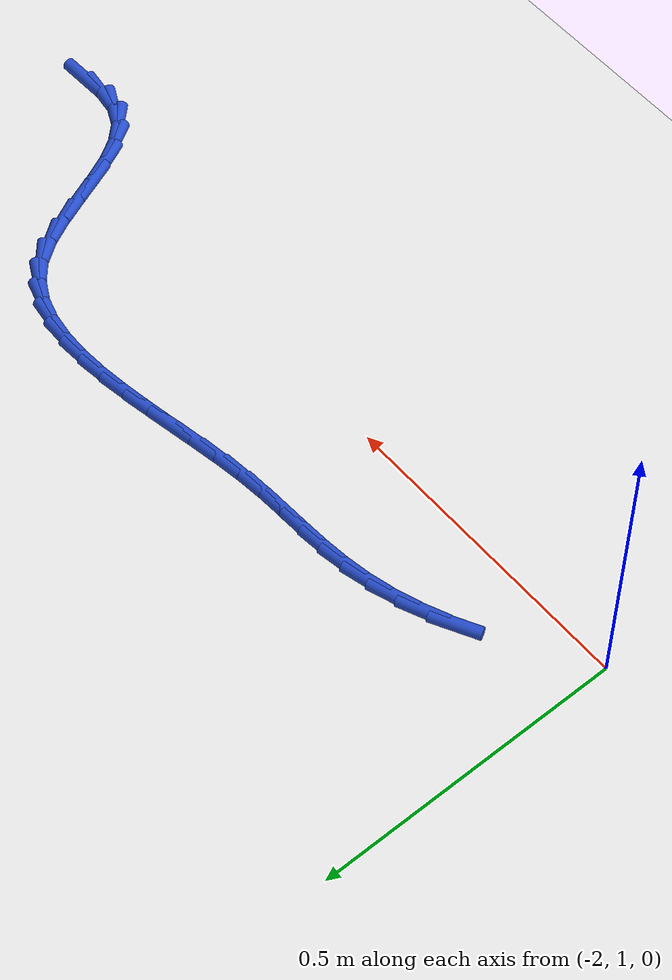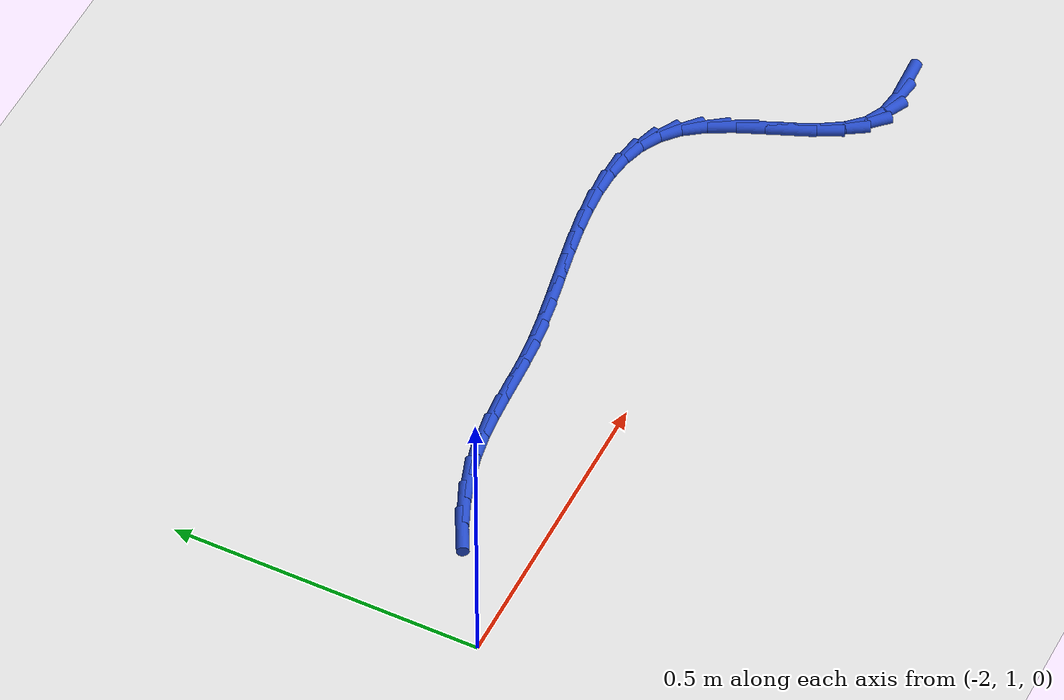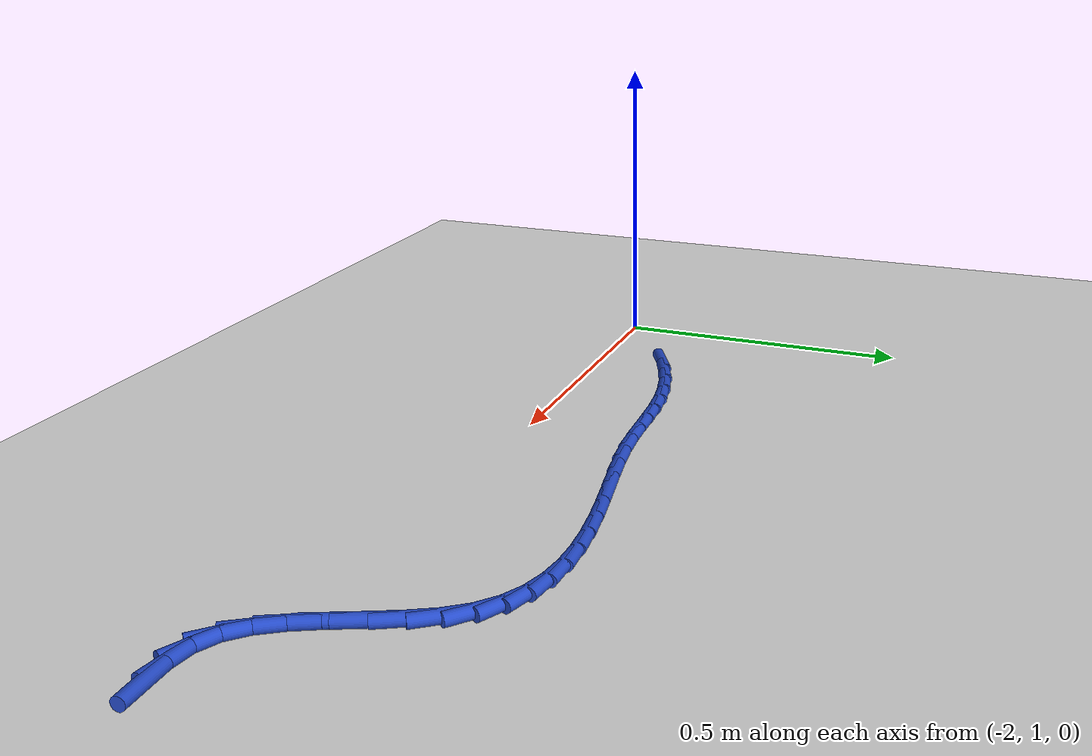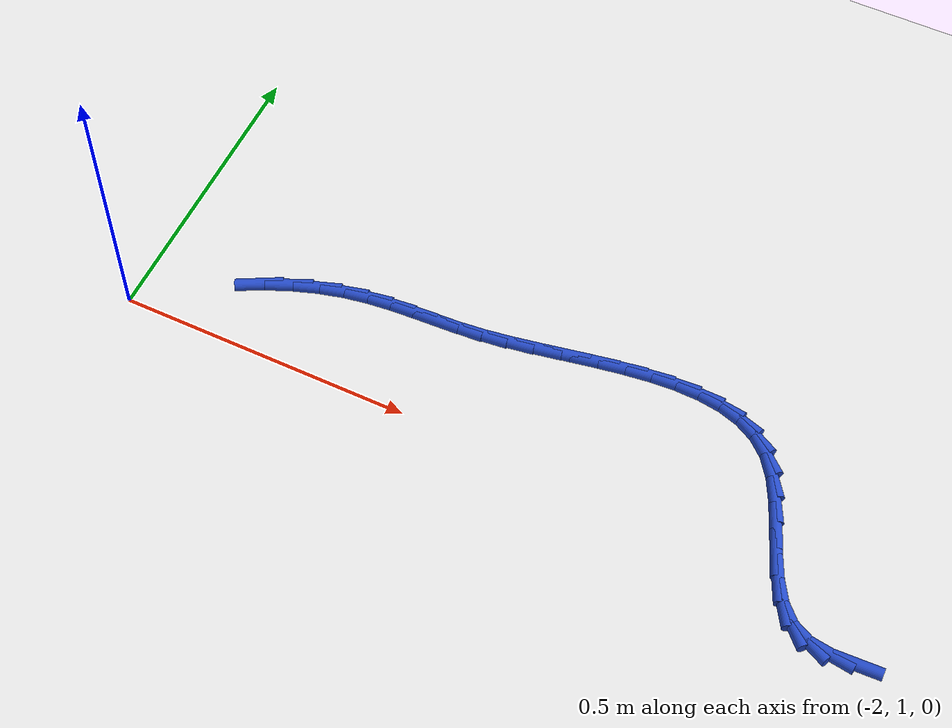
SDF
<sdf version="1.6">
 <world name="default">
  <model name="ground_plane">
   <static>1</static>
   <link name="link">
    <collision name="collision">
     <geometry><plane><normal>0 0 1</normal><size>100 100</size></plane></geometry>
     <surface><friction><ode><mu>100</mu><mu2>50</mu2></ode></friction></surface>
    </collision>
    <visual name="visual">
     <cast_shadows>0</cast_shadows>
     <geometry><plane><normal>0 0 1</normal><size>100 100</size></plane></geometry>
     <material>
      <script><uri>file://media/materials/scripts/gazebo.material</uri><name>Gazebo/WhiteGlow</name></script>
     </material>
    </visual>
   </link>
  </model>
  <model name="line">
   <link name="link_30">
    <pose>-0.7014262181568772 0.8988669522640895 0.01 0 1.57 0.03937064640493241</pose>
    <collision name="collision">
     <geometry><cylinder><radius>0.01</radius><length>0.08</length></cylinder></geometry>
    </collision>
    <visual name="visual">
     <material>
      <script><name>Gazebo/Blue</name><uri>file://media/materials/scripts/gazebo.material</uri></script>
     </material>
     <geometry><cylinder><radius>0.01</radius><length>0.08</length></cylinder></geometry>
    </visual>
   </link>
   <link name="link_31">
    <pose>-0.7425486307655478 0.8972470992615955 0.01 0 1.57 -0.14141432449012736</pose>
    <collision name="collision">
     <geometry><cylinder><radius>0.01</radius><length>0.08</length></cylinder></geometry>
    </collision>
    <visual name="visual">
     <material>
      <script><name>Gazebo/Blue</name><uri>file://media/materials/scripts/gazebo.material</uri></script>
     </material>
     <geometry><cylinder><radius>0.01</radius><length>0.08</length></cylinder></geometry>
    </visual>
   </link>
   <link name="link_32">
    <pose>-0.7795047738494155 0.9025083456058478 0.01 0 1.57 -0.46421868196721244</pose>
    <collision name="collision">
     <geometry><cylinder><radius>0.01</radius><length>0.08</length></cylinder></geometry>
    </collision>
    <visual name="visual">
     <material>
      <script><name>Gazebo/Blue</name><uri>file://media/materials/scripts/gazebo.material</uri></script>
     </material>
     <geometry><cylinder><radius>0.01</radius><length>0.08</length></cylinder></geometry>
    </visual>
   </link>
   <link name="link_33">
    <pose>-0.8106366461813062 0.9180965113349139 0.01 0 1.57 -0.8031513562574989</pose>
    <collision name="collision">
     <geometry><cylinder><radius>0.01</radius><length>0.08</length></cylinder></geometry>
    </collision>
    <visual name="visual">
     <material>
      <script><name>Gazebo/Blue</name><uri>file://media/materials/scripts/gazebo.material</uri></script>
     </material>
     <geometry><cylinder><radius>0.01</radius><length>0.08</length></cylinder></geometry>
    </visual>
   </link>
   <link name="link_34">
    <pose>-0.835928924039177 0.9443031555525615 0.01 0 1.57 -1.0201830672126324</pose>
    <collision name="collision">
     <geometry><cylinder><radius>0.01</radius><length>0.08</length></cylinder></geometry>
    </collision>
    <visual name="visual">
     <material>
      <script><name>Gazebo/Blue</name><uri>file://media/materials/scripts/gazebo.material</uri></script>
     </material>
     <geometry><cylinder><radius>0.01</radius><length>0.08</length></cylinder></geometry>
    </visual>
   </link>
   <link name="link_35">
    <pose>-0.8569039394316923 0.9784672387017579 0.01 0 1.57 -1.1367309435065938</pose>
    <collision name="collision">
     <geometry><cylinder><radius>0.01</radius><length>0.08</length></cylinder></geometry>
    </collision>
    <visual name="visual">
     <material>
      <script><name>Gazebo/Blue</name><uri>file://media/materials/scripts/gazebo.material</uri></script>
     </material>
     <geometry><cylinder><radius>0.01</radius><length>0.08</length></cylinder></geometry>
    </visual>
   </link>
   <link name="link_36">
    <pose>-0.8751432007690795 1.017814091002193 0.01 0 1.57 -1.182406942803605</pose>
    <collision name="collision">
     <geometry><cylinder><radius>0.01</radius><length>0.08</length></cylinder></geometry>
    </collision>
    <visual name="visual">
     <material>
      <script><name>Gazebo/Blue</name><uri>file://media/materials/scripts/gazebo.material</uri></script>
     </material>
     <geometry><cylinder><radius>0.01</radius><length>0.08</length></cylinder></geometry>
    </visual>
   </link>
   <link name="link_37">
    <pose>-0.8922282164615659 1.059569042673556 0.01 0 1.57 -1.1705185886554141</pose>
    <collision name="collision">
     <geometry><cylinder><radius>0.01</radius><length>0.08</length></cylinder></geometry>
    </collision>
    <visual name="visual">
     <material>
      <script><name>Gazebo/Blue</name><uri>file://media/materials/scripts/gazebo.material</uri></script>
     </material>
     <geometry><cylinder><radius>0.01</radius><length>0.08</length></cylinder></geometry>
    </visual>
   </link>
   <link name="link_38">
    <pose>-0.9097404949193789 1.1009574239355358 0.01 0 1.57 -1.0988694147319424</pose>
    <collision name="collision">
     <geometry><cylinder><radius>0.01</radius><length>0.08</length></cylinder></geometry>
    </collision>
    <visual name="visual">
     <material>
      <script><name>Gazebo/Blue</name><uri>file://media/materials/scripts/gazebo.material</uri></script>
     </material>
     <geometry><cylinder><radius>0.01</radius><length>0.08</length></cylinder></geometry>
    </visual>
   </link>
   <link name="link_39">
    <pose>-0.9292615445527463 1.1392045650078229 0.01 0 1.57 -0.9502490682633953</pose>
    <collision name="collision">
     <geometry><cylinder><radius>0.01</radius><length>0.08</length></cylinder></geometry>
    </collision>
    <visual name="visual">
     <material>
      <script><name>Gazebo/Blue</name><uri>file://media/materials/scripts/gazebo.material</uri></script>
     </material>
     <geometry><cylinder><radius>0.01</radius><length>0.08</length></cylinder></geometry>
    </visual>
   </link>
   <link name="link_40">
    <pose>-0.9523714994397455 1.1715381410669619 0.01 0 1.57 -0.7252552684759902</pose>
    <collision name="collision">
     <geometry><cylinder><radius>0.01</radius><length>0.08</length></cylinder></geometry>
    </collision>
    <visual name="visual">
     <material>
      <script><name>Gazebo/Blue</name><uri>file://media/materials/scripts/gazebo.material</uri></script>
     </material>
     <geometry><cylinder><radius>0.01</radius><length>0.08</length></cylinder></geometry>
    </visual>
   </link>
   <link name="link_41">
    <pose>-0.9801031539012923 1.196119726795475 0.01 0 1.57 -0.4966651508162846</pose>
    <collision name="collision">
     <geometry><cylinder><radius>0.01</radius><length>0.08</length></cylinder></geometry>
    </collision>
    <visual name="visual">
     <material>
      <script><name>Gazebo/Blue</name><uri>file://media/materials/scripts/gazebo.material</uri></script>
     </material>
     <geometry><cylinder><radius>0.01</radius><length>0.08</length></cylinder></geometry>
    </visual>
   </link>
   <link name="link_42">
    <pose>-1.0121089011509494 1.2134662089016306 0.01 0 1.57 -0.298592541449822</pose>
    <collision name="collision">
     <geometry><cylinder><radius>0.01</radius><length>0.08</length></cylinder></geometry>
    </collision>
    <visual name="visual">
     <material>
      <script><name>Gazebo/Blue</name><uri>file://media/materials/scripts/gazebo.material</uri></script>
     </material>
     <geometry><cylinder><radius>0.01</radius><length>0.08</length></cylinder></geometry>
    </visual>
   </link>
   <link name="link_43">
    <pose>-1.0478268947100895 1.2244600209776524 0.01 0 1.57 -0.14116448190820052</pose>
    <collision name="collision">
     <geometry><cylinder><radius>0.01</radius><length>0.08</length></cylinder></geometry>
    </collision>
    <visual name="visual">
     <material>
      <script><name>Gazebo/Blue</name><uri>file://media/materials/scripts/gazebo.material</uri></script>
     </material>
     <geometry><cylinder><radius>0.01</radius><length>0.08</length></cylinder></geometry>
    </visual>
   </link>
   <link name="link_44">
    <pose>-1.0866952881000869 1.2299835966157648 0.01 0 1.57 -0.0225683266223665</pose>
    <collision name="collision">
     <geometry><cylinder><radius>0.01</radius><length>0.08</length></cylinder></geometry>
    </collision>
    <visual name="visual">
     <material>
      <script><name>Gazebo/Blue</name><uri>file://media/materials/scripts/gazebo.material</uri></script>
     </material>
     <geometry><cylinder><radius>0.01</radius><length>0.08</length></cylinder></geometry>
    </visual>
   </link>
   <link name="link_45">
    <pose>-1.1281522348423132 1.2309193694081921 0.01 0 1.57 0.06360689847266744</pose>
    <collision name="collision">
     <geometry><cylinder><radius>0.01</radius><length>0.08</length></cylinder></geometry>
    </collision>
    <visual name="visual">
     <material>
      <script><name>Gazebo/Blue</name><uri>file://media/materials/scripts/gazebo.material</uri></script>
     </material>
     <geometry><cylinder><radius>0.01</radius><length>0.08</length></cylinder></geometry>
    </visual>
   </link>
   <link name="link_46">
    <pose>-1.1716358884581435 1.228149772947159 0.01 0 1.57 0.12378470963879804</pose>
    <collision name="collision">
     <geometry><cylinder><radius>0.01</radius><length>0.08</length></cylinder></geometry>
    </collision>
    <visual name="visual">
     <material>
      <script><name>Gazebo/Blue</name><uri>file://media/materials/scripts/gazebo.material</uri></script>
     </material>
     <geometry><cylinder><radius>0.01</radius><length>0.08</length></cylinder></geometry>
    </visual>
   </link>
   <link name="link_47">
    <pose>-1.2165844024689498 1.2225572408248895 0.01 0 1.57 0.16283719805359792</pose>
    <collision name="collision">
     <geometry><cylinder><radius>0.01</radius><length>0.08</length></cylinder></geometry>
    </collision>
    <visual name="visual">
     <material>
      <script><name>Gazebo/Blue</name><uri>file://media/materials/scripts/gazebo.material</uri></script>
     </material>
     <geometry><cylinder><radius>0.01</radius><length>0.08</length></cylinder></geometry>
    </visual>
   </link>
   <link name="link_48">
    <pose>-1.262435930396106 1.2150242066336077 0.01 0 1.57 0.18388304422452323</pose>
    <collision name="collision">
     <geometry><cylinder><radius>0.01</radius><length>0.08</length></cylinder></geometry>
    </collision>
    <visual name="visual">
     <material>
      <script><name>Gazebo/Blue</name><uri>file://media/materials/scripts/gazebo.material</uri></script>
     </material>
     <geometry><cylinder><radius>0.01</radius><length>0.08</length></cylinder></geometry>
    </visual>
   </link>
   <link name="link_49">
    <pose>-1.3086286257609843 1.2064331039655383 0.01 0 1.57 0.18843482636762715</pose>
    <collision name="collision">
     <geometry><cylinder><radius>0.01</radius><length>0.08</length></cylinder></geometry>
    </collision>
    <visual name="visual">
     <material>
      <script><name>Gazebo/Blue</name><uri>file://media/materials/scripts/gazebo.material</uri></script>
     </material>
     <geometry><cylinder><radius>0.01</radius><length>0.08</length></cylinder></geometry>
    </visual>
   </link>
   <link name="link_50">
    <pose>-1.3546006420849592 1.1976663664129055 0.01 0 1.57 0.17650269396958684</pose>
    <collision name="collision">
     <geometry><cylinder><radius>0.01</radius><length>0.08</length></cylinder></geometry>
    </collision>
    <visual name="visual">
     <material>
      <script><name>Gazebo/Blue</name><uri>file://media/materials/scripts/gazebo.material</uri></script>
     </material>
     <geometry><cylinder><radius>0.01</radius><length>0.08</length></cylinder></geometry>
    </visual>
   </link>
   <link name="link_51">
    <pose>-1.3997901328894038 1.1896064275679337 0.01 0 1.57 0.14652334351355203</pose>
    <collision name="collision">
     <geometry><cylinder><radius>0.01</radius><length>0.08</length></cylinder></geometry>
    </collision>
    <visual name="visual">
     <material>
      <script><name>Gazebo/Blue</name><uri>file://media/materials/scripts/gazebo.material</uri></script>
     </material>
     <geometry><cylinder><radius>0.01</radius><length>0.08</length></cylinder></geometry>
    </visual>
   </link>
   <link name="link_52">
    <pose>-1.44363525169569 1.1831357210228468 0.01 0 1.57 0.09819264468933056</pose>
    <collision name="collision">
     <geometry><cylinder><radius>0.01</radius><length>0.08</length></cylinder></geometry>
    </collision>
    <visual name="visual">
     <material>
      <script><name>Gazebo/Blue</name><uri>file://media/materials/scripts/gazebo.material</uri></script>
     </material>
     <geometry><cylinder><radius>0.01</radius><length>0.08</length></cylinder></geometry>
    </visual>
   </link>
   <link name="link_53">
    <pose>-1.4856597609849351 1.1789959096823739 0.01 0 1.57 0.05751145413509935</pose>
    <collision name="collision">
     <geometry><cylinder><radius>0.01</radius><length>0.08</length></cylinder></geometry>
    </collision>
    <visual name="visual">
     <material>
      <script><name>Gazebo/Blue</name><uri>file://media/materials/scripts/gazebo.material</uri></script>
     </material>
     <geometry><cylinder><radius>0.01</radius><length>0.08</length></cylinder></geometry>
    </visual>
   </link>
   <link name="link_54">
    <pose>-1.5261563213933664 1.176664322411486 0.01 0 1.57 0.043182065501372</pose>
    <collision name="collision">
     <geometry><cylinder><radius>0.01</radius><length>0.08</length></cylinder></geometry>
    </collision>
    <visual name="visual">
     <material>
      <script><name>Gazebo/Blue</name><uri>file://media/materials/scripts/gazebo.material</uri></script>
     </material>
     <geometry><cylinder><radius>0.01</radius><length>0.08</length></cylinder></geometry>
    </visual>
   </link>
   <link name="link_55">
    <pose>-1.5658238069753592 1.1749503329649094 0.01 0 1.57 0.057927254093104</pose>
    <collision name="collision">
     <geometry><cylinder><radius>0.01</radius><length>0.08</length></cylinder></geometry>
    </collision>
    <visual name="visual">
     <material>
      <script><name>Gazebo/Blue</name><uri>file://media/materials/scripts/gazebo.material</uri></script>
     </material>
     <geometry><cylinder><radius>0.01</radius><length>0.08</length></cylinder></geometry>
    </visual>
   </link>
   <link name="link_56">
    <pose>-1.6053647691853823 1.1726572681819398 0.01 0 1.57 0.10107804924206619</pose>
    <collision name="collision">
     <geometry><cylinder><radius>0.01</radius><length>0.08</length></cylinder></geometry>
    </collision>
    <visual name="visual">
     <material>
      <script><name>Gazebo/Blue</name><uri>file://media/materials/scripts/gazebo.material</uri></script>
     </material>
     <geometry><cylinder><radius>0.01</radius><length>0.08</length></cylinder></geometry>
    </visual>
   </link>
   <link name="link_57">
    <pose>-1.6454817594779065 1.1685884549018741 0.01 0 1.57 0.1684837900494039</pose>
    <collision name="collision">
     <geometry><cylinder><radius>0.01</radius><length>0.08</length></cylinder></geometry>
    </collision>
    <visual name="visual">
     <material>
      <script><name>Gazebo/Blue</name><uri>file://media/materials/scripts/gazebo.material</uri></script>
     </material>
     <geometry><cylinder><radius>0.01</radius><length>0.08</length></cylinder></geometry>
    </visual>
   </link>
   <link name="link_58">
    <pose>-1.6868773293074004 1.1615472199640064 0.01 0 1.57 0.252200047519293</pose>
    <collision name="collision">
     <geometry><cylinder><radius>0.01</radius><length>0.08</length></cylinder></geometry>
    </collision>
    <visual name="visual">
     <material>
      <script><name>Gazebo/Blue</name><uri>file://media/materials/scripts/gazebo.material</uri></script>
     </material>
     <geometry><cylinder><radius>0.01</radius><length>0.08</length></cylinder></geometry>
    </visual>
   </link>
   <link name="link_59">
    <pose>-1.730191828924542 1.1503856481204742 0.01 0 1.57 0.33511541404091305</pose>
    <collision name="collision">
     <geometry><cylinder><radius>0.01</radius><length>0.08</length></cylinder></geometry>
    </collision>
    <visual name="visual">
     <material>
      <script><name>Gazebo/Blue</name><uri>file://media/materials/scripts/gazebo.material</uri></script>
     </material>
     <geometry><cylinder><radius>0.01</radius><length>0.08</length></cylinder></geometry>
    </visual>
   </link>
   <link name="link_60">
    <pose>-1.7750228359813705 1.134773226558997 0.01 0 1.57 0.41228883957674495</pose>
    <collision name="collision">
     <geometry><cylinder><radius>0.01</radius><length>0.08</length></cylinder></geometry>
    </collision>
    <visual name="visual">
     <material>
      <script><name>Gazebo/Blue</name><uri>file://media/materials/scripts/gazebo.material</uri></script>
     </material>
     <geometry><cylinder><radius>0.01</radius><length>0.08</length></cylinder></geometry>
    </visual>
   </link>
   <link name="link_61">
    <pose>-1.820103726305783 1.115056867897165 0.01 0 1.57 0.4893554556167667</pose>
    <collision name="collision">
     <geometry><cylinder><radius>0.01</radius><length>0.08</length></cylinder></geometry>
    </collision>
    <visual name="visual">
     <material>
      <script><name>Gazebo/Blue</name><uri>file://media/materials/scripts/gazebo.material</uri></script>
     </material>
     <geometry><cylinder><radius>0.01</radius><length>0.08</length></cylinder></geometry>
    </visual>
   </link>
  </model>
 </world>
</sdf>
